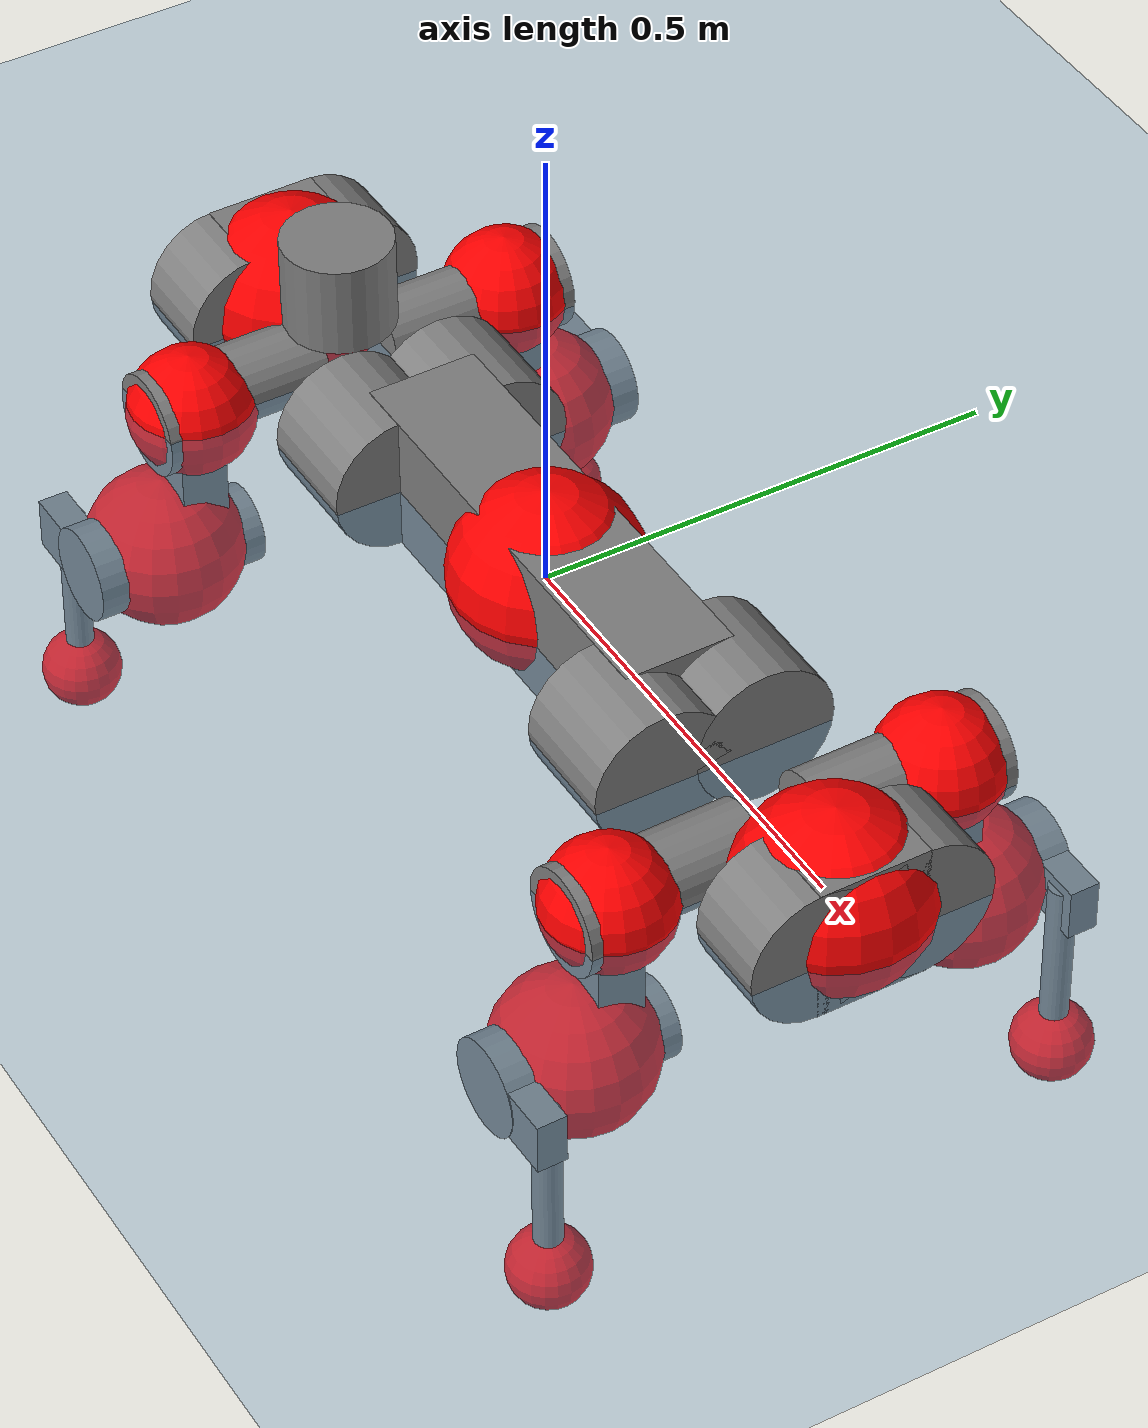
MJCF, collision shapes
<mujoco model="anymal_c">
  <compiler angle="radian" assetdir="assets" balanceinertia="true" inertiafromgeom="false"/>

  <option timestep="0.005" density="1.2" viscosity="2e-05"/>

  <size nkey="1"/>

  <visual>
    <quality shadowsize="8192"/>
    <map shadowclip="0.5"/>
  </visual>

  <default>
    <default class="/">
      <material specular="0" shininess="0.25"/>
      <geom contype="0" conaffinity="0" group="1" solref="-1000 -80"/>
      <site size="0.01 0.005 0.005" group="5"/>
      <general forcelimited="true" forcerange="-80 80" biastype="affine" gainprm="80" biasprm="0 -80 -2"/>
      <default class="anymal_c">
        <joint armature="0.01" damping="0.01" frictionloss="0.1"/>
        <default class="visual">
          <geom type="mesh" group="2"/>
          <default class="visual_zflip"/>
        </default>
        <default class="collision">
          <geom type="cylinder" group="3"/>
          <default class="foot">
            <geom size="0.03 0 0" type="sphere" condim="6" priority="1" friction="0.8 0.02 0.01" solimp="0.015 1 0.03"/>
          </default>
        </default>
      </default>
      <default class="reward_collision_sphere">
        <geom group="5" rgba="1 0 0 1"/>
      </default>
    </default>
  </default>

  <asset>
    <texture type="skybox" colorspace="auto" name="//unnamed_texture_0" builtin="gradient" rgb1="0.95 0.95 0.95" rgb2="0.95 0.95 0.95" width="100" height="600"/>
    <texture type="2d" colorspace="auto" name="texplane" builtin="checker" rgb1="0.345 0.575 0.748" rgb2="0.345 0.575 0.748" markrgb="1 1 1" width="512" height="512"/>
    <texture type="2d" colorspace="linear" name="base" file="base.png"/>
    <texture type="2d" colorspace="linear" name="top_shell" file="top_shell.png"/>
    <texture type="2d" colorspace="linear" name="bottom_shell" file="bottom_shell.png"/>
    <texture type="2d" colorspace="linear" name="remote" file="remote.png"/>
    <texture type="2d" colorspace="linear" name="hatch" file="hatch.png"/>
    <texture type="2d" colorspace="linear" name="handle" file="handle.png"/>
    <texture type="2d" colorspace="linear" name="face" file="face.png"/>
    <texture type="2d" colorspace="linear" name="battery" file="battery.png"/>
    <texture type="2d" colorspace="linear" name="lidar_cage" file="lidar_cage.png"/>
    <texture type="2d" colorspace="linear" name="depth_camera" file="depth_camera.png"/>
    <texture type="2d" colorspace="linear" name="wide_angle_camera" file="wide_angle_camera.png"/>
    <texture type="2d" colorspace="linear" name="lidar" file="lidar.png"/>
    <texture type="2d" colorspace="linear" name="drive" file="drive.png"/>
    <texture type="2d" colorspace="linear" name="hip_l" file="hip_l.png"/>
    <texture type="2d" colorspace="linear" name="shank_l" file="shank_l.png"/>
    <texture type="2d" colorspace="linear" name="foot" file="foot.png"/>
    <texture type="2d" colorspace="linear" name="thigh" file="thigh.png"/>
    <texture type="2d" colorspace="linear" name="shank_r" file="shank_r.png"/>
    <texture type="2d" colorspace="linear" name="hip_r" file="hip_r.png"/>
    <material name="MatPlane" class="/" texture="texplane" texuniform="true" texrepeat="2 2" specular="0.9" shininess="0.5"/>
    <material name="black_plastic" class="/" rgba="0.007 0.007 0.007 1"/>
    <material name="green" class="/" rgba="0.052 0.178 0.033 1"/>
    <material name="red" class="/" rgba="0.178 0.006 0.005 1"/>
    <material name="yellow" class="/" rgba="0.178 0.119 0.006 1"/>
    <material name="lwl" class="/" rgba="0.8 0.8 0.8 1"/>
    <material name="base" class="/" texture="base"/>
    <material name="top_shell" class="/" texture="top_shell"/>
    <material name="bottom_shell" class="/" texture="bottom_shell"/>
    <material name="hip_l" class="/" texture="hip_l"/>
    <material name="thigh" class="/" texture="thigh"/>
    <material name="shank_l" class="/" texture="shank_l"/>
    <material name="foot" class="/" texture="foot"/>
    <material name="hip_r" class="/" texture="hip_r"/>
    <material name="shank" class="/" texture="shank_r"/>
    <material name="hatch" class="/" texture="hatch"/>
    <material name="remote" class="/" texture="remote"/>
    <material name="handle" class="/" texture="handle"/>
    <material name="face" class="/" texture="face"/>
    <material name="depth_camera" class="/" texture="depth_camera"/>
    <material name="wide_angle_camera" class="/" texture="wide_angle_camera"/>
    <material name="battery" class="/" texture="battery"/>
    <material name="lidar_cage" class="/" texture="lidar_cage"/>
    <material name="lidar" class="/" texture="lidar"/>
    <material name="drive" class="/" texture="drive"/>
    <mesh name="base_0" class="/" file="base_0.obj"/>
    <mesh name="base_1" class="/" file="base_1.obj"/>
    <mesh name="base_2" class="/" file="base_2.obj"/>
    <mesh name="base_3" class="/" file="base_3.obj"/>
    <mesh name="base_4" class="/" file="base_4.obj"/>
    <mesh name="base_5" class="/" file="base_5.obj"/>
    <mesh name="top_shell" class="/" file="top_shell.obj"/>
    <mesh name="bottom_shell" class="/" file="bottom_shell.obj"/>
    <mesh name="remote" class="/" file="remote.obj"/>
    <mesh name="handle" class="/" file="handle.obj"/>
    <mesh name="face" class="/" file="face.obj"/>
    <mesh name="wide_angle_camera" class="/" file="wide_angle_camera.obj"/>
    <mesh name="depth_camera" class="/" file="depth_camera.obj"/>
    <mesh name="battery" class="/" file="battery.obj"/>
    <mesh name="lidar_cage" class="/" file="lidar_cage.obj"/>
    <mesh name="lidar" class="/" file="lidar.obj"/>
    <mesh name="drive" class="/" file="drive.obj"/>
    <mesh name="hip_l" class="/" file="hip_l.obj"/>
    <mesh name="thigh" class="/" file="thigh.obj"/>
    <mesh name="shank_l" class="/" file="shank_l.obj"/>
    <mesh name="foot" class="/" file="foot.obj"/>
    <mesh name="hip_r" class="/" file="hip_r.obj"/>
    <mesh name="hatch" class="/" file="hatch.obj"/>
    <mesh name="shank_r" class="/" file="shank_r.obj"/>
  </asset>

  <worldbody>
    <geom name="floor" class="/" size="100 100 0.125" type="plane" group="0" material="MatPlane"/>
    <light name="toplight_shadow" class="/" pos="0 0 5" dir="0.0990148 0.0990148 -0.990148" type="directional" ambient="0.04 0.04 0.04" diffuse="0.55 0.55 0.55" specular="0.12 0.12 0.12"/>
    <light name="toplight_fill" class="/" pos="0 0 5" dir="0.0990148 0.0990148 -0.990148" type="directional" castshadow="false" ambient="0.04 0.04 0.04" diffuse="0.3 0.3 0.3" specular="0.08 0.08 0.08"/>
    <body name="trunk" childclass="anymal_c" pos="0.00141361 0.000947215 0.00983857" quat="0.99999 0.0041611 -0.00142641 0.000401869">
      <inertial pos="0.00421069 -0.00708365 0.0268705" quat="0.507601 0.464249 0.52049 0.50587" mass="10.7941" diaginertia="1.05426 0.164576 0.0156652"/>
      <joint name="//unnamed_joint_0" type="free" armature="0" damping="0" frictionloss="0"/>
      <geom name="//unnamed_geom_1" class="visual" material="green" mesh="base_0"/>
      <geom name="//unnamed_geom_2" class="visual" material="yellow" mesh="base_1"/>
      <geom name="//unnamed_geom_3" class="visual" material="red" mesh="base_2"/>
      <geom name="//unnamed_geom_4" class="visual" material="black_plastic" mesh="base_3"/>
      <geom name="//unnamed_geom_5" class="visual" material="lwl" mesh="base_4"/>
      <geom name="//unnamed_geom_6" class="visual" material="base" mesh="base_5"/>
      <geom name="trunk_1" class="collision" size="0.245092 0.0591601 0.0760629" type="box"/>
      <geom name="trunk_2" class="collision" size="0.0760629 0.0612729" pos="0.248246 0.0552329 0" quat="0.707107 0 0.707107 0"/>
      <geom name="trunk_3" class="collision" size="0.0760629 0.0612729" pos="-0.248246 0.0552329 0" quat="0.707107 0 0.707107 0"/>
      <geom name="trunk_4" class="collision" size="0.0760629 0.0612729" pos="0.248246 -0.0552329 0" quat="0.707107 0 0.707107 0"/>
      <geom name="trunk_5" class="collision" size="0.0760629 0.0612729" pos="-0.248246 -0.0552329 0" quat="0.707107 0 0.707107 0"/>
      <geom name="//unnamed_geom_12" class="visual" material="top_shell" mesh="top_shell"/>
      <geom name="//unnamed_geom_13" class="visual" material="bottom_shell" mesh="bottom_shell"/>
      <geom name="//unnamed_geom_14" class="visual" material="remote" mesh="remote"/>
      <geom name="//unnamed_geom_15" class="visual" material="handle" mesh="handle"/>
      <geom name="//unnamed_geom_16" class="visual" pos="0.473095 0 0" quat="1 0 0 0" material="face" mesh="face"/>
      <geom name="trunk_6" class="collision" size="0.0464829 0.0591601 0.0760629" pos="0.535869 0 0" type="box"/>
      <geom name="//unnamed_geom_18" class="collision" size="0.0760629 0.0464829" pos="0.535869 0.0552329 0" quat="0.707107 0 0.707107 0"/>
      <geom name="//unnamed_geom_19" class="collision" size="0.0760629 0.0464829" pos="0.535869 -0.0552329 0" quat="0.707107 0 0.707107 0"/>
      <geom name="//unnamed_geom_20" class="visual" pos="0.526887 0 -0.0135906" quat="0.965926 0 0.258819 0" material="depth_camera" mesh="depth_camera"/>
      <geom name="//unnamed_geom_21" class="visual" pos="0.585519 0 0.00905726" material="wide_angle_camera" mesh="wide_angle_camera"/>
      <geom name="//unnamed_geom_22" class="visual_zflip" pos="-0.473095 0 0" quat="0 0 0 1" material="face" mesh="face"/>
      <geom name="trunk_7" class="collision" size="0.0464829 0.0591601 0.0760629" pos="-0.535869 0 0" quat="0 0 0 1" type="box"/>
      <geom name="//unnamed_geom_24" class="collision" size="0.0760629 0.0464829" pos="-0.535869 -0.0552329 0" quat="0 -0.707107 0 0.707107"/>
      <geom name="//unnamed_geom_25" class="collision" size="0.0760629 0.0464829" pos="-0.535869 0.0552329 0" quat="0 -0.707107 0 0.707107"/>
      <geom name="//unnamed_geom_26" class="visual" pos="-0.526887 0 -0.0135906" quat="0 -0.258819 0 0.965926" material="depth_camera" mesh="depth_camera"/>
      <geom name="//unnamed_geom_27" class="visual_zflip" pos="-0.585519 0 0.00905726" quat="0 0 0 1" material="wide_angle_camera" mesh="wide_angle_camera"/>
      <geom name="//unnamed_geom_28" class="visual" material="battery" mesh="battery"/>
      <geom name="//unnamed_geom_29" class="visual" pos="0 0.0556847 0.0216522" quat="0.683013 -0.183013 0.183013 0.683013" material="depth_camera" mesh="depth_camera"/>
      <geom name="//unnamed_geom_30" class="visual" pos="0 -0.0556847 0.0216522" quat="0.683013 0.183013 0.183013 -0.683013" material="depth_camera" mesh="depth_camera"/>
      <geom name="//unnamed_geom_31" class="visual" pos="-0.415456 0 0.0444695" quat="1 0 0 0" material="lidar_cage" mesh="lidar_cage"/>
      <geom name="trunk_8" class="collision" size="0.0591601 0.0507086" pos="-0.415456 0 0.0807711"/>
      <geom name="//unnamed_geom_33" class="visual" pos="-0.415456 -0.000138417 0.0860349" quat="0.707107 0 0 -0.707107" material="lidar" mesh="lidar"/>
      <geom name="//unnamed_geom_34" class="visual" pos="0.342294 0.081995 3.17427e-09" quat="0.258819 0.965926 0 0" material="drive" mesh="drive"/>
      <geom name="//unnamed_geom_35" class="visual" pos="0.342294 -0.081995 -3.17427e-09" quat="0.258819 -0.965926 0 0" material="drive" mesh="drive"/>
      <geom name="//unnamed_geom_36" class="visual" pos="-0.342294 0.081995 -3.17427e-09" quat="0 0 0.965926 -0.258819" material="drive" mesh="drive"/>
      <geom name="//unnamed_geom_37" class="visual" pos="-0.342294 -0.081995 3.17427e-09" quat="0 0 -0.965926 -0.258819" material="drive" mesh="drive"/>
      <geom name="//unnamed_geom_38" class="visual" pos="0.132398 0 0.044167" quat="1 0 0 0" material="hatch" mesh="hatch"/>
      <geom name="//unnamed_geom_39" class="reward_collision_sphere" size="0.101417"/>
      <geom name="//unnamed_geom_40" class="reward_collision_sphere" size="0.101417" pos="0.513613 0 0"/>
      <geom name="//unnamed_geom_41" class="reward_collision_sphere" size="0.101417" pos="-0.513613 0 0"/>
      <site name="imu" pos="0.287333 -0.0136418 0.0603489" size="0.00845144"/>
      <camera name="track" pos="0 -1.57808 0" quat="0.707107 0.707107 0 0" mode="trackcom"/>
      <camera name="ego_camera" pos="0.513613 0 -0.0242011" quat="-0.5 -0.5 0.5 0.5"/>
      <body name="LF_HIP" pos="0.343214 0.0811512 -0.00277618" quat="0.258376 0.966044 -0.00041652 -1.62324e-05">
        <inertial pos="0.0729789 -0.0104203 0.00439679" quat="-0.111004 0.726195 -0.0942843 0.671884" mass="1.76909" diaginertia="0.0110229 0.001588 0.000281265"/>
        <joint name="LF_HAA" pos="0 0 0" axis="0.999261 0.0319681 0.0213253" stiffness="0.027478" range="-0.749542 0.420122" armature="0.00824035" damping="0.0365822" frictionloss="0.0700733"/>
        <geom name="//unnamed_geom_42" class="visual" pos="0 0.000186728 -3.067e-05" quat="0.258819 -0.965926 0 0" material="hip_l" mesh="hip_l"/>
        <geom name="//unnamed_geom_43" class="visual" pos="0.0683676 -0.0781377 -0.0437517" quat="0.183013 -0.683013 0.683013 0.183013" material="drive" mesh="drive"/>
        <geom name="//unnamed_geom_44" class="collision" size="0.0422572 0.0591601" pos="0.0683676 -0.00943678 -0.00417771" quat="-0.353553 -0.612372 0.612372 -0.353553"/>
        <body name="LF_THIGH" pos="0.0751902 -0.0606949 -0.0332923" quat="0.182663 -0.683334 0.682994 0.182231">
          <inertial pos="0.0359702 0.00169902 -0.150409" quat="0.993517 -0.00229207 -0.0798779 0.0808593" mass="2.03759" diaginertia="0.0646662 0.0100621 0.000403894"/>
          <joint name="LF_HFE" pos="0 0 0" axis="0.999991 -0.00369467 -0.00194944" stiffness="0.0119671" range="-3.06693 3.14751" armature="0.0106007" damping="0" frictionloss="0.0833211"/>
          <geom name="//unnamed_geom_45" class="visual" pos="0.00700978 1.10458e-05 0" quat="0.707107 0 0 -0.707107" material="thigh" mesh="thigh"/>
          <geom name="//unnamed_geom_46" class="collision" size="0.0549343 0.0338057" pos="0.0456545 0 0" quat="0.5 0.5 -0.5 -0.5"/>
          <geom name="//unnamed_geom_47" class="collision" size="0.0316929 0.0253543 0.119431" pos="0.0342409 0 -0.0854988" quat="0.707107 0 0 -0.707107" type="box"/>
          <geom name="//unnamed_geom_48" class="visual" pos="0.114479 0 -0.172433" quat="1 0 0 0" material="drive" mesh="drive"/>
          <geom name="//unnamed_geom_49" class="collision" size="0.0422572 0.0591601" pos="0.0345833 0 -0.172433" quat="0.707107 0 0.707107 0"/>
          <geom name="//unnamed_geom_50" class="reward_collision_sphere" size="0.0676115" pos="0.028534 0 0"/>
          <body name="LF_SHANK" pos="0.11462 -0.000774353 -0.169475" quat="1 -0.000103498 0.000223869 -2.39354e-05">
            <inertial pos="0.0172216 -0.0391623 -0.048661" quat="0.993341 -0.111784 0.00742955 -0.0268936" mass="0.352238" diaginertia="0.0212843 0.00281673 8.74701e-05"/>
            <joint name="LF_KFE" pos="0 0 0" axis="0.999985 -0.00246832 -0.00480648" range="-2.92543 3.05919" armature="0.00882919" damping="0.00864497" frictionloss="0.0412822"/>
            <geom name="//unnamed_geom_51" class="visual" pos="0.00228574 0.0121877 0" quat="0.707107 0 0 -0.707107" material="shank_l" mesh="shank_l"/>
            <geom name="LF_kfe_act" class="collision" size="0.0507086 0.0169029" pos="0.0228272 0 0" quat="0.5 0.5 -0.5 -0.5"/>
            <geom name="//unnamed_geom_53" class="collision" size="0.0485949 0.0285236 0.0160577" pos="0.0228272 -0.0453691 0" quat="0.5 0.5 -0.5 -0.5" type="box"/>
            <geom name="//unnamed_geom_54" class="visual" pos="0.0148942 -0.0654686 -0.204481" quat="0.382683 0 0 -0.92388" material="foot" mesh="foot"/>
            <geom name="LF_calf" class="collision" size="0.01479 0.119378" pos="0.0148948 -0.0693962 -0.102241" quat="0.707107 0 0 -0.707107"/>
            <geom name="LF_foot" class="foot" size="0.0310126" pos="0.0148948 -0.0693962 -0.190868" quat="0.707107 0 0 -0.707107"/>
            <geom name="//unnamed_geom_57" class="reward_collision_sphere" size="0.0845144" pos="-0.0570681 0 0"/>
            <geom name="//unnamed_geom_58" class="reward_collision_sphere" size="0.0422572" pos="0.0148948 -0.0693962 -0.190868"/>
            <site name="LF_foot" class="foot" pos="0.0148948 -0.0693962 -0.190868" quat="0.707107 0 0 -0.707107" size="0.00845144"/>
          </body>
        </body>
      </body>
      <body name="RF_HIP" pos="0.346122 -0.0856554 -0.000640142" quat="0.258281 -0.966056 -0.00483587 -0.00162128">
        <inertial pos="0.0666042 0.0128161 -0.00583333" quat="0.0923228 0.663954 0.125627 0.731341" mass="1.48244" diaginertia="0.0115841 0.00148745 0.00027373"/>
        <joint name="RF_HAA" pos="0 0 0" axis="0.999834 -0.0182329 -0.000383208" stiffness="0.0345624" range="-0.295835 0.789505" armature="0.00841998" damping="0.0313234" frictionloss="0.0642852"/>
        <geom name="//unnamed_geom_59" class="visual" pos="0 -0.000186727 -3.06699e-05" quat="0.258819 0.965926 0 0" material="hip_r" mesh="hip_r"/>
        <geom name="//unnamed_geom_60" class="visual" pos="0.0683676 0.0781377 -0.0437517" quat="0.183013 0.683013 0.683013 -0.183013" material="drive" mesh="drive"/>
        <geom name="//unnamed_geom_61" class="collision" size="0.0422572 0.0591601" pos="0.0683676 0.00943678 -0.00417771" quat="-0.353553 0.612372 0.612372 0.353553"/>
        <body name="RF_THIGH" pos="0.0704204 0.0613845 -0.0271897" quat="0.182114 0.683759 0.682572 -0.182767">
          <inertial pos="0.038041 0.00101357 -0.147493" quat="0.99262 -0.00356959 -0.0822769 0.0890106" mass="1.71449" diaginertia="0.0602164 0.009966 0.00033047"/>
          <joint name="RF_HFE" pos="0 0 0" axis="0.999992 -0.00295672 0.0027228" range="-3.14774 3.21788" armature="0.00958821" damping="0.0593983" frictionloss="0.112398"/>
          <geom name="//unnamed_geom_62" class="visual" pos="0.00700978 1.10458e-05 0" quat="0.707107 0 0 -0.707107" material="thigh" mesh="thigh"/>
          <geom name="//unnamed_geom_63" class="collision" size="0.0549343 0.0338057" pos="0.0456545 0 0" quat="0.5 0.5 0.5 0.5"/>
          <geom name="//unnamed_geom_64" class="collision" size="0.0316929 0.0253543 0.119431" pos="0.0342409 0 -0.0854988" quat="0.707107 0 0 0.707107" type="box"/>
          <geom name="//unnamed_geom_65" class="visual" pos="0.114479 0 -0.172433" quat="1 0 0 0" material="drive" mesh="drive"/>
          <geom name="//unnamed_geom_66" class="collision" size="0.0422572 0.0591601" pos="0.0345833 0 -0.172433" quat="0.707107 0 0.707107 0"/>
          <geom name="//unnamed_geom_67" class="reward_collision_sphere" size="0.0676115" pos="0.028534 0 0"/>
          <body name="RF_SHANK" pos="0.123999 -0.000754695 -0.170287" quat="1 0.000165902 7.27969e-05 -9.31981e-05">
            <inertial pos="0.00650654 0.056847 -0.0554127" quat="0.989383 0.128916 -0.0466398 0.0482446" mass="0.388314" diaginertia="0.0212928 0.00282199 0.000106342"/>
            <joint name="RF_KFE" pos="0 0 0" axis="0.999996 0.0011832 0.00272826" range="-3.13972 3.11042" armature="0.00839212" damping="0.0335264" frictionloss="0.0971243"/>
            <geom name="//unnamed_geom_68" class="visual" pos="0.00228572 -0.0121876 0" quat="0.707107 0 0 0.707107" material="shank" mesh="shank_r"/>
            <geom name="RF_kfe_act" class="collision" size="0.0507086 0.0169029" pos="0.0228272 0 0" quat="0.5 0.5 0.5 0.5"/>
            <geom name="//unnamed_geom_70" class="collision" size="0.0485949 0.0285236 0.0160577" pos="0.0228272 0.0453691 0" quat="0.5 0.5 0.5 0.5" type="box"/>
            <geom name="//unnamed_geom_71" class="visual" pos="0.0148953 0.0654686 -0.204481" quat="0.382683 0 0 0.92388" material="foot" mesh="foot"/>
            <geom name="RF_calf" class="collision" size="0.01479 0.119378" pos="0.0148948 0.0693962 -0.102241" quat="0.707107 0 0 0.707107"/>
            <geom name="RF_foot" class="foot" size="0.0331753" pos="0.0148948 0.0693962 -0.190868" quat="0.707107 0 0 0.707107"/>
            <geom name="//unnamed_geom_74" class="reward_collision_sphere" size="0.0845144" pos="-0.0570681 0 0"/>
            <geom name="//unnamed_geom_75" class="reward_collision_sphere" size="0.0422572" pos="0.0148948 0.0693962 -0.190868"/>
            <site name="RF_foot" class="foot" pos="0.0148948 0.0693962 -0.190868" quat="0.707107 0 0 0.707107" size="0.00845144"/>
          </body>
        </body>
      </body>
      <body name="LH_HIP" pos="-0.342015 0.0872583 -0.00540679" quat="0.000270372 -0.000188894 0.965922 -0.258832">
        <inertial pos="0.0655804 0.0203686 0.00488878" quat="0.141239 0.683016 0.129847 0.704755" mass="1.72745" diaginertia="0.0123477 0.00154201 0.000302248"/>
        <joint name="LH_HAA" pos="0 0 0" axis="0.999269 -0.0380752 -0.00336482" stiffness="0.00496911" range="-0.33471 0.548084" armature="0.00521356" damping="0.0264463" frictionloss="0.0831903"/>
        <geom name="//unnamed_geom_76" class="visual" pos="0 -0.000186727 -3.06699e-05" quat="-0.258819 -0.965926 0 0" material="hip_r" mesh="hip_r"/>
        <geom name="//unnamed_geom_77" class="visual" pos="0.0683676 0.0781377 -0.0437517" quat="0.183013 0.683013 0.683013 -0.183013" material="drive" mesh="drive"/>
        <geom name="//unnamed_geom_78" class="collision" size="0.0422572 0.0591601" pos="0.0683676 0.00943678 -0.00417771" quat="-0.353553 0.612372 0.612372 0.353553"/>
        <body name="LH_THIGH" pos="0.0677463 0.0647354 -0.0354095" quat="0.18412 0.682417 0.682614 -0.185594">
          <inertial pos="0.0245788 0.00584627 -0.138201" quat="0.992611 -0.00562032 -0.0819293 0.0893242" mass="1.55896" diaginertia="0.0448892 0.00799791 0.000272971"/>
          <joint name="LH_HFE" pos="0 0 0" axis="0.998649 -0.00615664 -0.0516041" range="-3.04576 3.17506" armature="0.00875125" damping="0.0597173" frictionloss="0.0737558"/>
          <geom name="//unnamed_geom_79" class="visual" pos="0.00700978 1.10458e-05 0" quat="0.707107 0 0 -0.707107" material="thigh" mesh="thigh"/>
          <geom name="//unnamed_geom_80" class="collision" size="0.0549343 0.0338057" pos="0.0456545 0 0" quat="0.5 0.5 -0.5 -0.5"/>
          <geom name="//unnamed_geom_81" class="collision" size="0.0316929 0.0253543 0.119431" pos="0.0342409 0 -0.0854988" quat="0.707107 0 0 -0.707107" type="box"/>
          <geom name="//unnamed_geom_82" class="visual" pos="0.114479 0 -0.172433" quat="1 0 0 0" material="drive" mesh="drive"/>
          <geom name="//unnamed_geom_83" class="collision" size="0.0422572 0.0591601" pos="0.0345833 0 -0.172433" quat="0.707107 0 0.707107 0"/>
          <geom name="//unnamed_geom_84" class="reward_collision_sphere" size="0.0676115" pos="0.028534 0 0"/>
          <body name="LH_SHANK" pos="0.11865 0.00108537 -0.167179" quat="0.999995 0.00153777 -0.00280965 -0.000616439">
            <inertial pos="0.0157255 0.0429535 -0.0387053" quat="0.991128 0.128516 -0.0337916 0.00255986" mass="0.389084" diaginertia="0.0210483 0.0031457 9.43586e-05"/>
            <joint name="LH_KFE" pos="0 0 0" axis="0.999969 0.00779855 -0.000641933" range="-3.12455 3.35886" armature="0.00496477" damping="0.0556102" frictionloss="0.0827807"/>
            <geom name="//unnamed_geom_85" class="visual" pos="0.00228572 -0.0121876 0" quat="-0.707107 0 0 -0.707107" material="shank" mesh="shank_r"/>
            <geom name="LH_kfe_act" class="collision" size="0.0507086 0.0169029" pos="0.0228272 0 0" quat="0.5 0.5 -0.5 -0.5"/>
            <geom name="//unnamed_geom_87" class="collision" size="0.0485949 0.0285236 0.0160577" pos="0.0228272 0.0453691 0" quat="0.5 0.5 -0.5 -0.5" type="box"/>
            <geom name="//unnamed_geom_88" class="visual" pos="0.0148953 0.0654686 -0.204481" quat="-0.382683 0 0 -0.92388" material="foot" mesh="foot"/>
            <geom name="LH_calf" class="collision" size="0.01479 0.119378" pos="0.0148948 0.0693962 -0.102241" quat="0.707107 0 0 -0.707107"/>
            <geom name="LH_foot" class="foot" size="0.0233657" pos="0.0148948 0.0693962 -0.190868" quat="0.707107 0 0 -0.707107"/>
            <geom name="//unnamed_geom_91" class="reward_collision_sphere" size="0.0845144" pos="-0.0570681 0 0"/>
            <geom name="//unnamed_geom_92" class="reward_collision_sphere" size="0.0422572" pos="0.0148948 0.0693962 -0.190868"/>
            <site name="LH_foot" class="foot" pos="0.0148948 0.0693962 -0.190868" quat="0.707107 0 0 -0.707107" size="0.00845144"/>
          </body>
        </body>
      </body>
      <body name="RH_HIP" pos="-0.353087 -0.0803321 -0.00842797" quat="0.000579212 0.000330664 -0.96574 -0.25951">
        <inertial pos="0.0715187 -0.0078295 -0.00544948" quat="-0.0959353 0.701266 -0.161108 0.687798" mass="1.67566" diaginertia="0.00881306 0.00134772 0.000223861"/>
        <joint name="RH_HAA" pos="0 0 0" axis="0.998512 0.0541412 -0.00652873" stiffness="0.00653344" range="-0.66727 0.49946" armature="0.00823835" damping="0.0159624" frictionloss="0.0393082"/>
        <geom name="//unnamed_geom_93" class="visual" pos="0 0.000186728 -3.067e-05" quat="-0.258819 0.965926 0 0" material="hip_l" mesh="hip_l"/>
        <geom name="//unnamed_geom_94" class="visual" pos="0.0683676 -0.0781377 -0.0437517" quat="-0.183013 0.683013 -0.683013 -0.183013" material="drive" mesh="drive"/>
        <geom name="//unnamed_geom_95" class="collision" size="0.0422572 0.0591601" pos="0.0683676 -0.00943678 -0.00417771" quat="0.353553 0.612372 -0.612372 0.353553"/>
        <body name="RH_THIGH" pos="0.0670228 -0.0588523 -0.0199568" quat="-0.182191 0.682995 -0.683294 -0.182849">
          <inertial pos="0.0330244 0.00345994 -0.140513" quat="0.992974 0.00254255 -0.0631482 0.10004" mass="2.11661" diaginertia="0.05356 0.00907978 0.00034331"/>
          <joint name="RH_HFE" pos="0 0 0" axis="0.99993 0.0071746 0.00940796" stiffness="0.00458607" range="-3.10658 3.26811" armature="0.0090847" damping="0.0116721" frictionloss="0.0855378"/>
          <geom name="//unnamed_geom_96" class="visual" pos="0.00700978 1.10458e-05 0" quat="0.707107 0 0 -0.707107" material="thigh" mesh="thigh"/>
          <geom name="//unnamed_geom_97" class="collision" size="0.0549343 0.0338057" pos="0.0456545 0 0" quat="0.5 0.5 0.5 0.5"/>
          <geom name="//unnamed_geom_98" class="collision" size="0.0316929 0.0253543 0.119431" pos="0.0342409 0 -0.0854988" quat="0.707107 0 0 0.707107" type="box"/>
          <geom name="//unnamed_geom_99" class="visual" pos="0.114479 0 -0.172433" quat="1 0 0 0" material="drive" mesh="drive"/>
          <geom name="//unnamed_geom_100" class="collision" size="0.0422572 0.0591601" pos="0.0345833 0 -0.172433" quat="0.707107 0 0.707107 0"/>
          <geom name="//unnamed_geom_101" class="reward_collision_sphere" size="0.0676115" pos="0.028534 0 0"/>
          <body name="RH_SHANK" pos="0.123496 -0.00622829 -0.166621" quat="0.999985 -0.00210049 -0.00485249 -0.00148104">
            <inertial pos="0.00531003 -0.0469842 -0.0496012" quat="0.988651 -0.147117 0.0261157 -0.0156124" mass="0.333399" diaginertia="0.0183891 0.00255922 9.53934e-05"/>
            <joint name="RH_KFE" pos="0 0 0" axis="0.998674 0.0382013 -0.0345122" stiffness="0.0437393" range="-3.29383 3.14243" armature="0.00898452" damping="0.0473245" frictionloss="0.086065"/>
            <geom name="//unnamed_geom_102" class="visual" pos="0.00228574 0.0121877 0" quat="0.707107 0 0 -0.707107" material="shank_l" mesh="shank_l"/>
            <geom name="RH_kfe_act" class="collision" size="0.0507086 0.0169029" pos="0.0228272 0 0" quat="0.5 0.5 0.5 0.5"/>
            <geom name="//unnamed_geom_104" class="collision" size="0.0485949 0.0285236 0.0160577" pos="0.0228272 -0.0453691 0" quat="0.5 0.5 0.5 0.5" type="box"/>
            <geom name="//unnamed_geom_105" class="visual" pos="0.0148942 -0.0654686 -0.204481" quat="0.382683 0 0 -0.92388" material="foot" mesh="foot"/>
            <geom name="RH_calf" class="collision" size="0.01479 0.119378" pos="0.0148948 -0.0693962 -0.102241" quat="0.707107 0 0 0.707107"/>
            <geom name="RH_foot" class="foot" size="0.025371" pos="0.0148948 -0.0693962 -0.190868" quat="0.707107 0 0 0.707107"/>
            <geom name="//unnamed_geom_108" class="reward_collision_sphere" size="0.0845144" pos="-0.0570681 0 0"/>
            <geom name="//unnamed_geom_109" class="reward_collision_sphere" size="0.0422572" pos="0.0148948 -0.0693962 -0.190868"/>
            <site name="RH_foot" class="foot" pos="0.0148948 -0.0693962 -0.190868" quat="0.707107 0 0 0.707107" size="0.00845144"/>
          </body>
        </body>
      </body>
    </body>
  </worldbody>

  <contact>
    <pair class="/" geom1="floor" geom2="LF_foot" name="//unnamed_contact_0"/>
    <pair class="/" geom1="floor" geom2="RF_foot" name="//unnamed_contact_1"/>
    <pair class="/" geom1="floor" geom2="LH_foot" name="//unnamed_contact_2"/>
    <pair class="/" geom1="floor" geom2="RH_foot" name="//unnamed_contact_3"/>
  </contact>

  <actuator>
    <general name="LF_HAA" class="/" joint="LF_HAA" forcerange="-65.5993 65.5993" gainprm="68.1937" biasprm="0 -68.1937 -2.05968"/>
    <general name="LF_HFE" class="/" joint="LF_HFE" forcerange="-69.9268 69.9268" gainprm="68.1937" biasprm="0 -68.1937 -2.05968"/>
    <general name="LF_KFE" class="/" joint="LF_KFE" forcerange="-57.8689 57.8689" gainprm="68.1937" biasprm="0 -68.1937 -2.05968"/>
    <general name="RF_HAA" class="/" joint="RF_HAA" forcerange="-65.2645 65.2645" gainprm="68.1937" biasprm="0 -68.1937 -2.05968"/>
    <general name="RF_HFE" class="/" joint="RF_HFE" forcerange="-58.7952 58.7952" gainprm="68.1937" biasprm="0 -68.1937 -2.05968"/>
    <general name="RF_KFE" class="/" joint="RF_KFE" forcerange="-64.4472 64.4472" gainprm="68.1937" biasprm="0 -68.1937 -2.05968"/>
    <general name="LH_HAA" class="/" joint="LH_HAA" forcerange="-65.2471 65.2471" gainprm="68.1937" biasprm="0 -68.1937 -2.05968"/>
    <general name="LH_HFE" class="/" joint="LH_HFE" forcerange="-92.2327 92.2327" gainprm="68.1937" biasprm="0 -68.1937 -2.05968"/>
    <general name="LH_KFE" class="/" joint="LH_KFE" forcerange="-46.5416 46.5416" gainprm="68.1937" biasprm="0 -68.1937 -2.05968"/>
    <general name="RH_HAA" class="/" joint="RH_HAA" forcerange="-69.4243 69.4243" gainprm="68.1937" biasprm="0 -68.1937 -2.05968"/>
    <general name="RH_HFE" class="/" joint="RH_HFE" forcerange="-71.1572 71.1572" gainprm="68.1937" biasprm="0 -68.1937 -2.05968"/>
    <general name="RH_KFE" class="/" joint="RH_KFE" forcerange="-56.8503 56.8503" gainprm="68.1937" biasprm="0 -68.1937 -2.05968"/>
  </actuator>

  <sensor>
    <gyro site="imu" name="imu_angular_velocity"/>
    <velocimeter site="imu" name="imu_linear_velocity"/>
    <framelinvel objtype="site" objname="LF_foot" name="LF_foot_global_linear_velocity"/>
    <framelinvel objtype="site" objname="RF_foot" name="RF_foot_global_linear_velocity"/>
    <framelinvel objtype="site" objname="LH_foot" name="LH_foot_global_linear_velocity"/>
    <framelinvel objtype="site" objname="RH_foot" name="RH_foot_global_linear_velocity"/>
  </sensor>

  <keyframe>
    <key name="home" qpos="0 0 0.55 1 0 0 0 0 0.4 -0.8 0 -0.4 0.8 0 -0.4 0.8 0 0.4 -0.8"/>
  </keyframe>
</mujoco>
